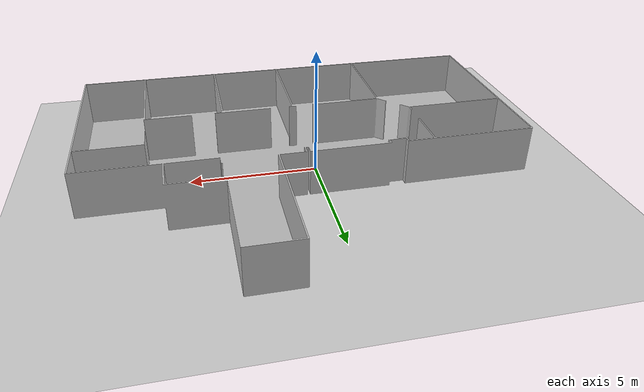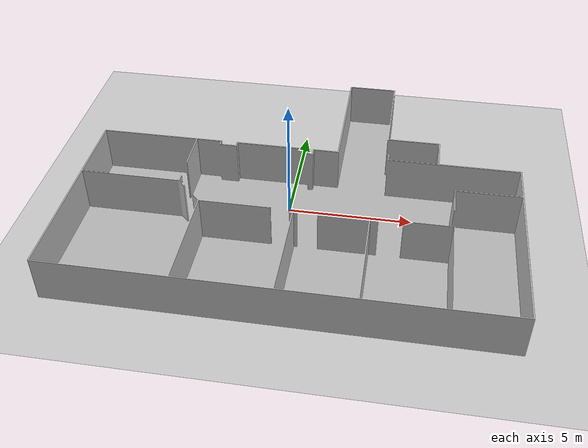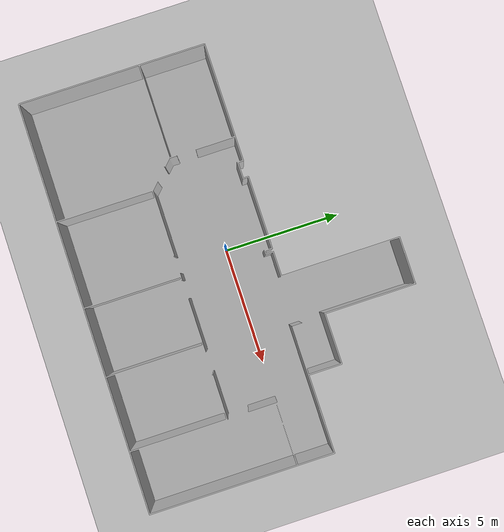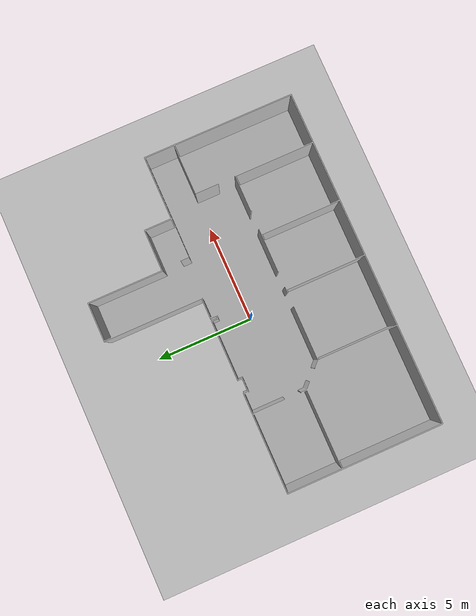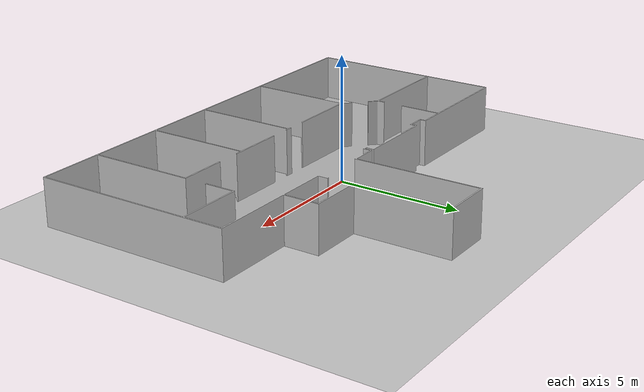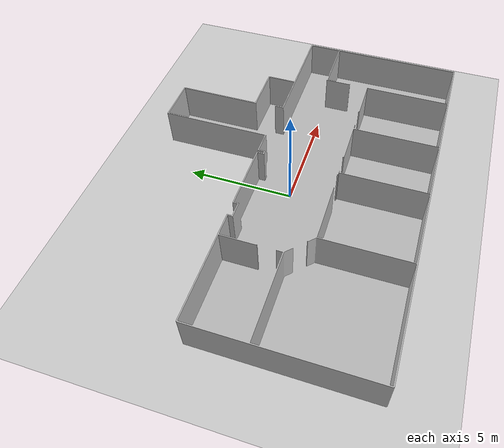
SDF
<?xml version="1.0" ?>
<sdf version="1.4">
  <world name="default">

    <include>
      <uri>model://sun</uri>
    </include>

    <include>
      <uri>model://willow_closed</uri>
    </include>

    <include>
      <uri>model://ground_plane</uri>
    </include>

  </world>
</sdf>

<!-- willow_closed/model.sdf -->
<sdf version="1.4">
  <model name="willow_closed">
    <static>true</static>
    <pose>0 -2 0.001 0 0 0</pose>
    <link name="walls">
      <collision name="collision">
        <geometry>
          <mesh>
            <uri>model://willow_closed/meshes/willowgarage_collision.dae</uri>
          </mesh>
        </geometry>
        <surface>
          <friction>
            <ode>
              <mu>0.99</mu>
              <mu2>0.99</mu2>
            </ode>
          </friction>
          <bounce/>
          <contact>
            <ode/>
          </contact>
        </surface>
        <max_contacts>100</max_contacts>
      </collision>
      <visual name="visual">
        <geometry>
          <mesh>
            <uri>model://willow_closed/meshes/willowgarage_visual.dae</uri>
          </mesh>
        </geometry>
        <cast_shadows>true</cast_shadows>
      </visual>
    </link>
  </model>
</sdf>
